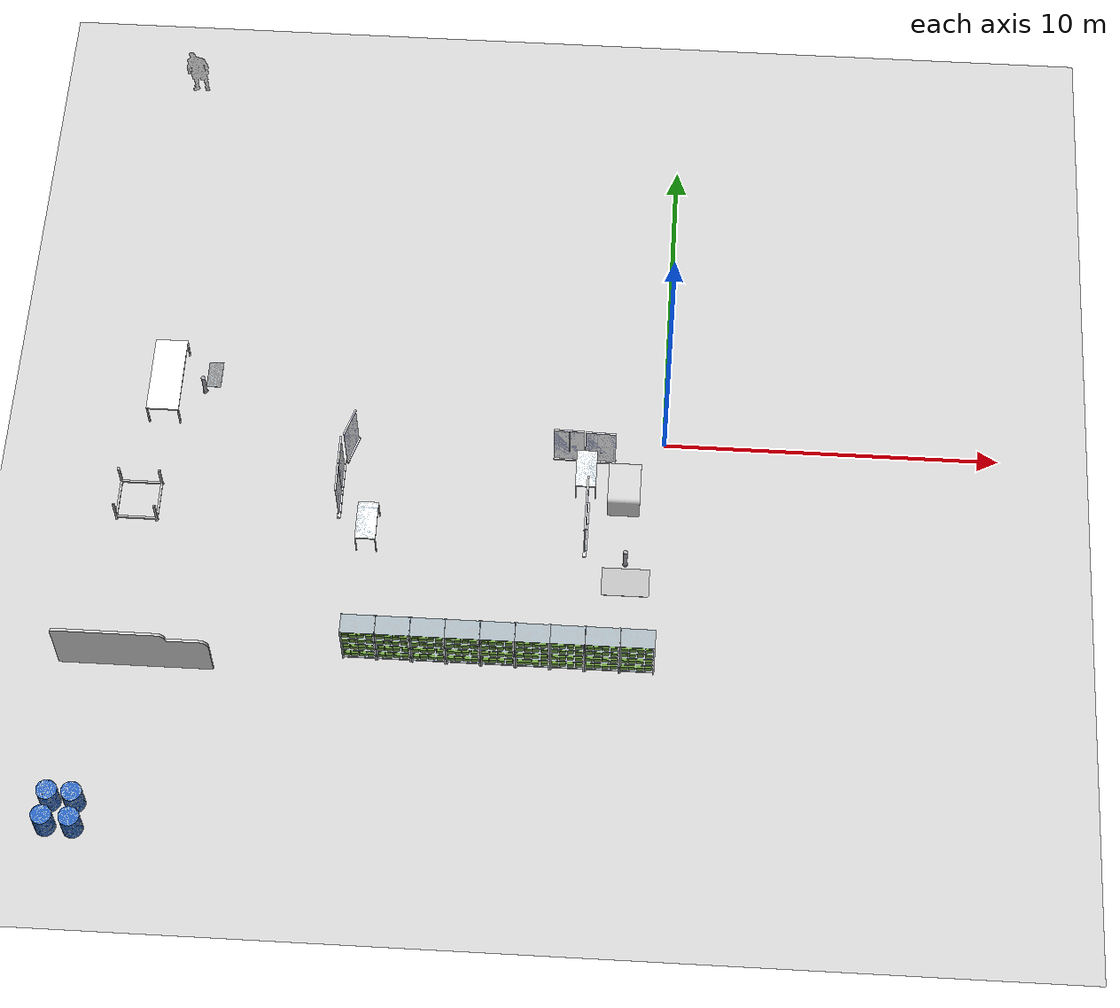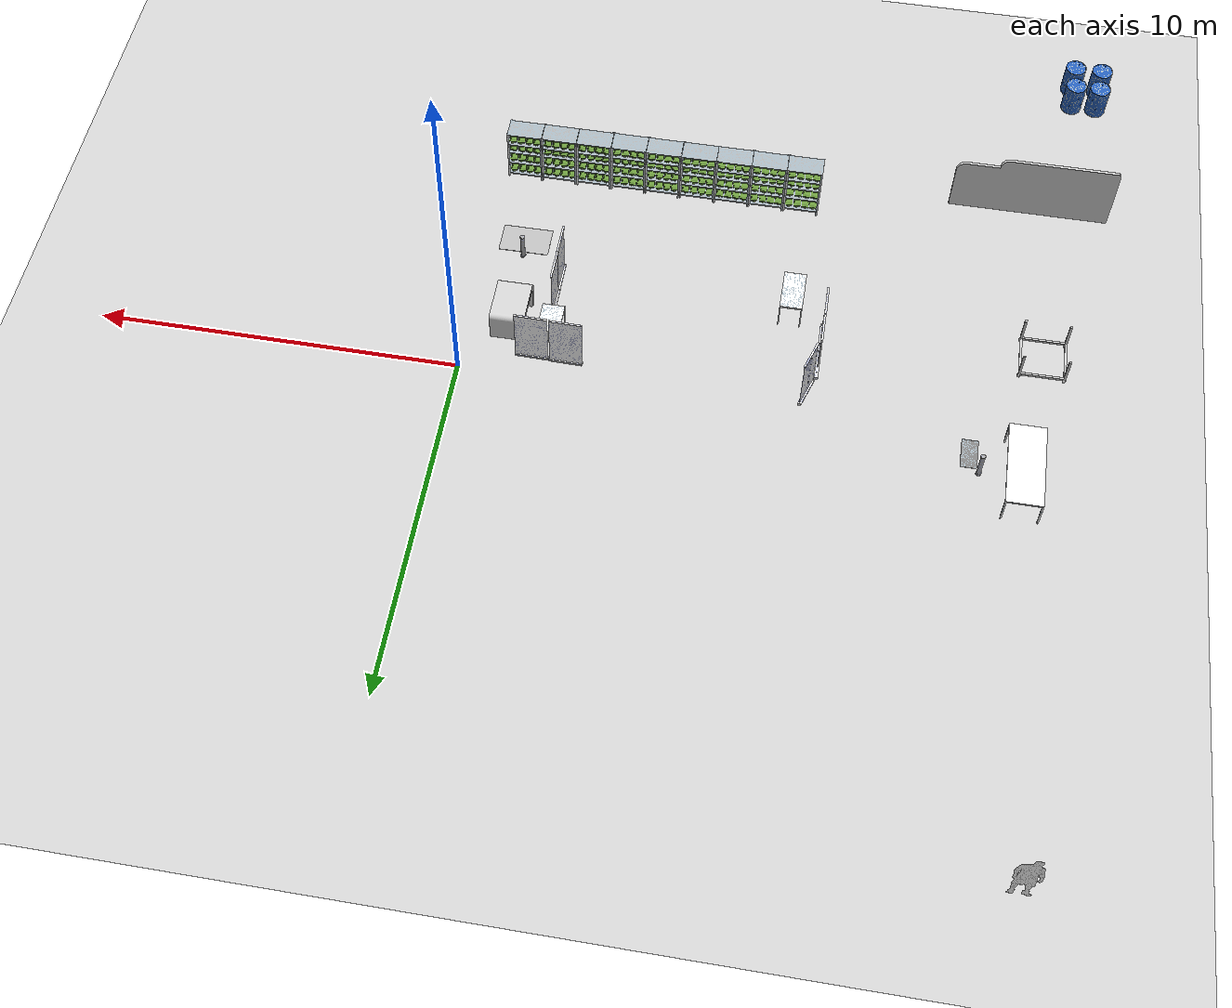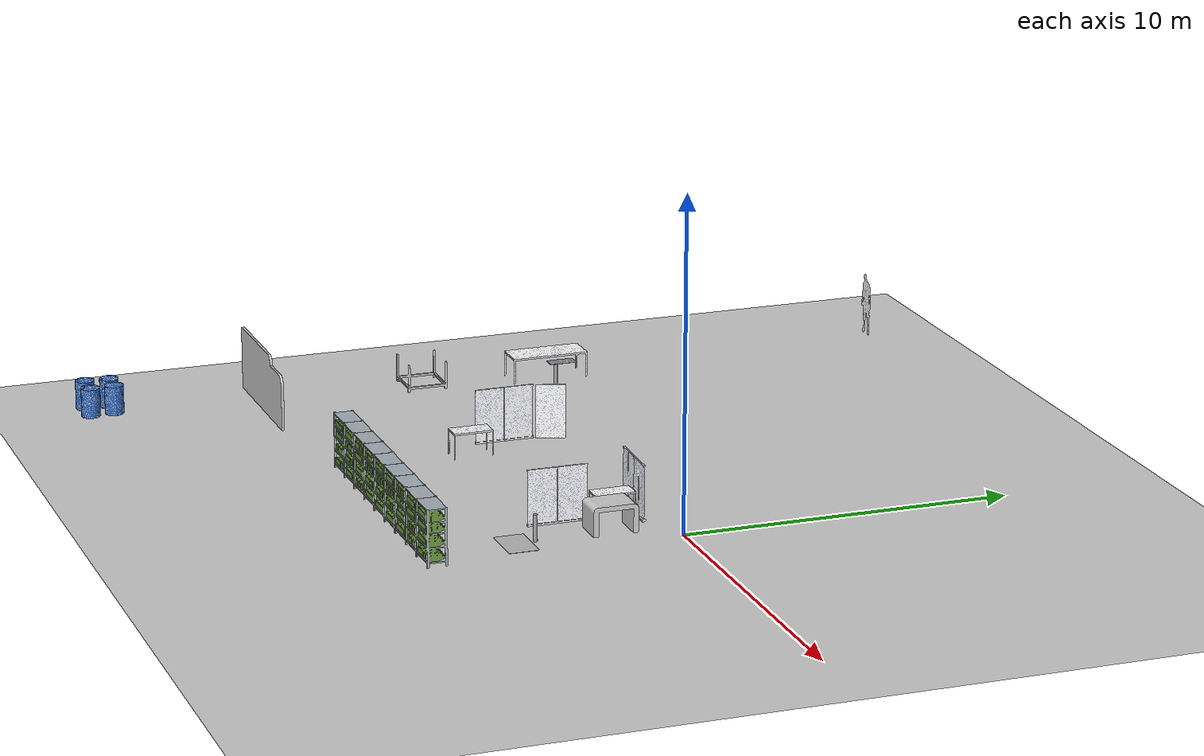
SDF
<sdf version="1.7">
 <world name="default">
  <model name="ground_plane">
   <static>1</static>
   <link name="link">
    <collision name="collision">
     <geometry><plane><normal>0 0 1</normal><size>100 100</size></plane></geometry>
     <surface>
      <contact><collide_bitmask>65535</collide_bitmask></contact>
      <friction><ode><mu>100</mu><mu2>50</mu2></ode></friction>
     </surface>
    </collision>
    <visual name="visual">
     <cast_shadows>0</cast_shadows>
     <geometry><plane><normal>0 0 1</normal><size>100 100</size></plane></geometry>
     <material>
      <script><uri>file://media/materials/scripts/gazebo.material</uri><name>Gazebo/Grey</name></script>
     </material>
    </visual>
   </link>
  </model>
  <model name="Pilotfabrik"><pose>-0.88371 -0.686599 0 0 -0 0</pose><static>1</static></model>
  <model name="Pilotfabrik_0"><pose>-0.936681 1.63881 0 0 -0 0</pose><static>1</static></model>
  <model name="plate">
   <static>1</static>
   <link name="link">
    <collision name="collision">
     <geometry><mesh><scale>4 2 2</scale><uri>model://plate/meshes/plate.dae</uri></mesh></geometry>
    </collision>
    <visual name="visual">
     <geometry><mesh><scale>4 2 2</scale><uri>model://plate/meshes/plate.dae</uri></mesh></geometry>
    </visual>
   </link>
   <pose>-13.852 1.61372 0.916164 0 0 -1.57471</pose>
  </model>
  <model name="plate_8">
   <static>1</static>
   <link name="link">
    <collision name="collision"><geometry><box><size>0.0 0.0 0.0</size></box></geometry></collision>
    <visual name="visual">
     <geometry><box><size>0.9 1.4 0.01</size></box></geometry>
     <material>
      <lighting>1</lighting>
      <script>
       <uri>model://plate_8/materials/scripts</uri>
       <uri>model://plate_8/materials/textures</uri>
       <name>plateby</name>
      </script>
     </material>
    </visual>
   </link>
   <pose>-0.964761 -4.67282 0 0 -0 1.57294</pose>
  </model>
  <model name="whitetable">
   <static>1</static>
   <link name="link">
    <collision name="collision">
     <geometry><mesh><scale>0.8 1 1</scale><uri>model://whitetable/meshes/whitetable.dae</uri></mesh></geometry>
    </collision>
    <visual name="visual">
     <geometry><mesh><scale>0.8 1 1</scale><uri>model://whitetable/meshes/whitetable.dae</uri></mesh></geometry>
     <material>
      <script>
       <uri>model://flipchart/materials/scripts</uri>
       <uri>model://flipchart/materials/textures</uri>
       <name>FlipChart/Diffuse</name>
      </script>
     </material>
    </visual>
   </link>
   <pose>-15.1353 1.25439 0 0 -0 0</pose>
  </model>
  <model name="gestell">
   <static>1</static>
   <link name="link">
    <collision name="collision">
     <geometry><mesh><scale>1.2 1.2 1.2</scale><uri>model://gestell/meshes/gestell.dae</uri></mesh></geometry>
    </collision>
    <visual name="visual">
     <geometry><mesh><scale>1.2 1.2 1.2</scale><uri>model://gestell/meshes/gestell.dae</uri></mesh></geometry>
    </visual>
   </link>
   <pose>-14.919 -3.40551 0 0 -0 0</pose>
  </model>
  <model name="trennwand">
   <static>1</static>
   <link name="link">
    <collision name="collision">
     <geometry><mesh><scale>0.8 0.8 1</scale><uri>model://trennwand/meshes/trennwand.dae</uri></mesh></geometry>
    </collision>
    <visual name="visual">
     <geometry><mesh><scale>0.8 0.8 1</scale><uri>model://trennwand/meshes/trennwand.dae</uri></mesh></geometry>
     <material>
      <script>
       <uri>model://flipchart/materials/scripts</uri>
       <uri>model://flipchart/materials/textures</uri>
       <name>FlipChart/Diffuse</name>
      </script>
     </material>
    </visual>
   </link>
   <pose>-17.1241 -8.13244 -0.052084 0 -0 0</pose>
  </model>
  <model name="barrel">
   <static>1</static>
   <link name="link">
    <collision name="collision">
     <geometry><mesh><scale>1 1 1</scale><uri>model://barrel/meshes/barrel.dae</uri></mesh></geometry>
    </collision>
    <visual name="visual">
     <geometry><mesh><scale>1 1 1</scale><uri>model://barrel/meshes/barrel.dae</uri></mesh></geometry>
    </visual>
   </link>
   <pose>-17.099 -13.5867 0 0 -0 0</pose>
  </model>
  <model name="barrel_clone">
   <static>1</static>
   <link name="link">
    <collision name="collision">
     <geometry><mesh><scale>1 1 1</scale><uri>model://barrel/meshes/barrel.dae</uri></mesh></geometry>
    </collision>
    <visual name="visual">
     <geometry><mesh><scale>1 1 1</scale><uri>model://barrel/meshes/barrel.dae</uri></mesh></geometry>
    </visual>
   </link>
   <pose>-17.0534 -12.8394 0 0 -0 0</pose>
  </model>
  <model name="barrel_clone_0">
   <static>1</static>
   <link name="link">
    <collision name="collision">
     <geometry><mesh><scale>1 1 1</scale><uri>model://barrel/meshes/barrel.dae</uri></mesh></geometry>
    </collision>
    <visual name="visual">
     <geometry><mesh><scale>1 1 1</scale><uri>model://barrel/meshes/barrel.dae</uri></mesh></geometry>
    </visual>
   </link>
   <pose>-16.3229 -13.5954 0 0 -0 0</pose>
  </model>
  <model name="barrel_clone_1">
   <static>1</static>
   <link name="link">
    <collision name="collision">
     <geometry><mesh><scale>1 1 1</scale><uri>model://barrel/meshes/barrel.dae</uri></mesh></geometry>
    </collision>
    <visual name="visual">
     <geometry><mesh><scale>1 1 1</scale><uri>model://barrel/meshes/barrel.dae</uri></mesh></geometry>
    </visual>
   </link>
   <pose>-16.3545 -12.8492 0 0 -0 0</pose>
  </model>
  <model name="shaq">
   <static>1</static>
   <link name="link">
    <collision name="collision">
     <geometry><mesh><scale>1 1 1</scale><uri>model://shaq/meshes/shaq.dae</uri></mesh></geometry>
    </collision>
    <visual name="visual">
     <geometry><mesh><scale>1 1 1</scale><uri>model://shaq/meshes/shaq.dae</uri></mesh></geometry>
     <material>
      <script>
       <uri>model://shaq/materials/scripts</uri>
       <uri>model://shaq/materials/textures</uri>
       <name>shaq/Diffuse</name>
      </script>
     </material>
    </visual>
   </link>
   <pose>-15.9128 12.3578 0 0 -0 0</pose>
  </model>
  <model name="banner_0_clone_clone_0_clone">
   <static>1</static>
   <link name="link">
    <collision name="collision">
     <geometry><mesh><scale>1 1.5 1</scale><uri>model://banner/meshes/banner.dae</uri></mesh></geometry>
    </collision>
    <visual name="visual">
     <geometry><mesh><scale>1 1.5 1</scale><uri>model://banner/meshes/banner.dae</uri></mesh></geometry>
     <material>
      <script>
       <uri>model://banner/materials/scripts</uri>
       <uri>model://banner/materials/textures</uri>
       <name>FlipChart/Diffuse</name>
      </script>
     </material>
    </visual>
   </link>
   <pose>-10.0821 -3.55091 0 0 -0 0.008857</pose>
  </model>
  <model name="banner_0_clone_clone_0_clone_0">
   <static>1</static>
   <link name="link">
    <collision name="collision">
     <geometry><mesh><scale>1 1.5 1</scale><uri>model://banner/meshes/banner.dae</uri></mesh></geometry>
    </collision>
    <visual name="visual">
     <geometry><mesh><scale>1 1.5 1</scale><uri>model://banner/meshes/banner.dae</uri></mesh></geometry>
     <material>
      <script>
       <uri>model://banner/materials/scripts</uri>
       <uri>model://banner/materials/textures</uri>
       <name>FlipChart/Diffuse</name>
      </script>
     </material>
    </visual>
   </link>
   <pose>-10.0903 -2.62492 0 0 -0 0.001032</pose>
  </model>
  <model name="banner_0_clone_clone_0_clone_1">
   <static>1</static>
   <link name="link">
    <collision name="collision">
     <geometry><mesh><scale>1 1.5 1</scale><uri>model://banner/meshes/banner.dae</uri></mesh></geometry>
    </collision>
    <visual name="visual">
     <geometry><mesh><scale>1 1.5 1</scale><uri>model://banner/meshes/banner.dae</uri></mesh></geometry>
     <material>
      <script>
       <uri>model://banner/materials/scripts</uri>
       <uri>model://banner/materials/textures</uri>
       <name>FlipChart/Diffuse</name>
      </script>
     </material>
    </visual>
   </link>
   <pose>-10.1499 -1.46423 0 0 0 -0.30684</pose>
  </model>
  <model name="whitetablesmall_0">
   <static>1</static>
   <link name="link">
    <collision name="collision">
     <geometry>
      <mesh><scale>0.5 0.5 1</scale><uri>model://whitetablesmall/meshes/whitetable.dae</uri></mesh>
     </geometry>
    </collision>
    <visual name="visual">
     <geometry>
      <mesh><scale>0.5 0.5 1</scale><uri>model://whitetablesmall/meshes/whitetable.dae</uri></mesh>
     </geometry>
     <material>
      <script>
       <uri>model://flipchart/materials/scripts</uri>
       <uri>model://flipchart/materials/textures</uri>
       <name>FlipChart/Diffuse</name>
      </script>
     </material>
    </visual>
   </link>
   <pose>-8.647886 -3.433512 0 0 -0 0</pose>
  </model>
  <model name="banner_0_clone_clone_0_clone_2">
   <static>1</static>
   <link name="link">
    <collision name="collision">
     <geometry><mesh><scale>1 1.5 1</scale><uri>model://banner/meshes/banner.dae</uri></mesh></geometry>
    </collision>
    <visual name="visual">
     <geometry><mesh><scale>1 1.5 1</scale><uri>model://banner/meshes/banner.dae</uri></mesh></geometry>
     <material>
      <script>
       <uri>model://banner/materials/scripts</uri>
       <uri>model://banner/materials/textures</uri>
       <name>FlipChart/Diffuse</name>
      </script>
     </material>
    </visual>
   </link>
   <pose>-1.65339 -1.57799 0 0 -0 3.13166</pose>
  </model>
  <model name="whitetablesmall_1_clone_1">
   <static>1</static>
   <link name="link">
    <collision name="collision">
     <geometry>
      <mesh><scale>0.5 0.5 0.9</scale><uri>model://whitetablesmall/meshes/whitetable.dae</uri></mesh>
     </geometry>
    </collision>
    <visual name="visual">
     <geometry>
      <mesh><scale>0.5 0.5 0.9</scale><uri>model://whitetablesmall/meshes/whitetable.dae</uri></mesh>
     </geometry>
     <material>
      <script>
       <uri>model://flipchart/materials/scripts</uri>
       <uri>model://flipchart/materials/textures</uri>
       <name>FlipChart/Diffuse</name>
      </script>
     </material>
    </visual>
   </link>
   <pose>-2.276631 -1.350417 0 0 -0 -3.140763</pose>
  </model>
  <model name="banner_0_clone_clone_clone_0">
   <static>1</static>
   <link name="link">
    <collision name="collision">
     <geometry><mesh><scale>1 1.5 1</scale><uri>model://banner/meshes/banner.dae</uri></mesh></geometry>
    </collision>
    <visual name="visual">
     <geometry><mesh><scale>1 1.5 1</scale><uri>model://banner/meshes/banner.dae</uri></mesh></geometry>
     <material>
      <script>
       <uri>model://banner/materials/scripts</uri>
       <uri>model://banner/materials/textures</uri>
       <name>FlipChart/Diffuse</name>
      </script>
     </material>
    </visual>
   </link>
   <pose>-0.930826 -1.20085 0 0 -0 1.55209</pose>
  </model>
  <model name="banner_0_clone_clone_0_clone_2_clone">
   <static>1</static>
   <link name="link">
    <collision name="collision">
     <geometry><mesh><scale>1 1.5 1</scale><uri>model://banner/meshes/banner.dae</uri></mesh></geometry>
    </collision>
    <visual name="visual">
     <geometry><mesh><scale>1 1.5 1</scale><uri>model://banner/meshes/banner.dae</uri></mesh></geometry>
     <material>
      <script>
       <uri>model://banner/materials/scripts</uri>
       <uri>model://banner/materials/textures</uri>
       <name>FlipChart/Diffuse</name>
      </script>
     </material>
    </visual>
   </link>
   <pose>-1.65781 -2.48745 0 0 -0 3.13166</pose>
  </model>
  <model name="pillar">
   <static>1</static>
   <link name="link">
    <collision name="collision">
     <geometry><mesh><scale>0.3 0.3 0.16</scale><uri>model://pillar/meshes/pillar.dae</uri></mesh></geometry>
    </collision>
    <visual name="visual">
     <geometry><mesh><scale>0.3 0.3 0.16</scale><uri>model://pillar/meshes/pillar.dae</uri></mesh></geometry>
    </visual>
   </link>
   <pose>-14.0797 1.05954 0 0 -0 0</pose>
  </model>
  <model name="banner_0_clone_clone_clone_0_clone">
   <static>1</static>
   <link name="link">
    <collision name="collision">
     <geometry><mesh><scale>1 1.5 1</scale><uri>model://banner/meshes/banner.dae</uri></mesh></geometry>
    </collision>
    <visual name="visual">
     <geometry><mesh><scale>1 1.5 1</scale><uri>model://banner/meshes/banner.dae</uri></mesh></geometry>
     <material>
      <script>
       <uri>model://banner/materials/scripts</uri>
       <uri>model://banner/materials/textures</uri>
       <name>FlipChart/Diffuse</name>
      </script>
     </material>
    </visual>
   </link>
   <pose>-1.87463 -1.16678 0 0 -0 1.55209</pose>
  </model>
  <model name="weirdtable">
   <static>1</static>
   <link name="link">
    <collision name="collision">
     <geometry>
      <mesh><scale>0.06 0.06 0.06</scale><uri>model://weirdtable/meshes/weirdtable.dae</uri></mesh>
     </geometry>
    </collision>
    <visual name="visual">
     <geometry>
      <mesh><scale>0.06 0.06 0.06</scale><uri>model://weirdtable/meshes/weirdtable.dae</uri></mesh>
     </geometry>
     <material>
      <script>
       <uri>model://flipchart/materials/scripts</uri>
       <uri>model://flipchart/materials/textures</uri>
       <name>FlipChart/Diffuse</name>
      </script>
     </material>
    </visual>
   </link>
   <pose>-1.135127 -1.195516 0 0 -0 -1.570335</pose>
  </model>
  <model name="pillar_clone_0">
   <static>1</static>
   <link name="link">
    <collision name="collision">
     <geometry><mesh><scale>0.3 0.3 0.16</scale><uri>model://pillar/meshes/pillar.dae</uri></mesh></geometry>
    </collision>
    <visual name="visual">
     <geometry><mesh><scale>0.3 0.3 0.16</scale><uri>model://pillar/meshes/pillar.dae</uri></mesh></geometry>
    </visual>
   </link>
   <pose>-1.055309 -4.160429 0 0 -0 0</pose>
  </model>
  <model name="newshelf">
   <static>1</static>
   <link name="link">
    <collision name="collision">
     <geometry><mesh><scale>0.9 1.4 1</scale><uri>model://newshelf/meshes/newshelf.dae</uri></mesh></geometry>
    </collision>
    <visual name="visual">
     <geometry><mesh><scale>0.9 1.4 1</scale><uri>model://newshelf/meshes/newshelf.dae</uri></mesh></geometry>
    </visual>
   </link>
   <pose>-5.35558 -7.50279 -0.136975 0 -0 3.13969</pose>
  </model>
  <model name="newshelf_clone_4">
   <static>1</static>
   <link name="link">
    <collision name="collision">
     <geometry><mesh><scale>0.9 1.4 1</scale><uri>model://newshelf/meshes/newshelf.dae</uri></mesh></geometry>
    </collision>
    <visual name="visual">
     <geometry><mesh><scale>0.9 1.4 1</scale><uri>model://newshelf/meshes/newshelf.dae</uri></mesh></geometry>
    </visual>
   </link>
   <pose>-6.35088 -7.50244 -0.136975 0 -0 3.13969</pose>
  </model>
  <model name="newshelf_clone_5">
   <static>1</static>
   <link name="link">
    <collision name="collision">
     <geometry><mesh><scale>0.9 1.4 1</scale><uri>model://newshelf/meshes/newshelf.dae</uri></mesh></geometry>
    </collision>
    <visual name="visual">
     <geometry><mesh><scale>0.9 1.4 1</scale><uri>model://newshelf/meshes/newshelf.dae</uri></mesh></geometry>
    </visual>
   </link>
   <pose>-7.35088 -7.50244 -0.136975 0 -0 3.13969</pose>
  </model>
  <model name="newshelf_clone_6">
   <static>1</static>
   <link name="link">
    <collision name="collision">
     <geometry><mesh><scale>0.9 1.4 1</scale><uri>model://newshelf/meshes/newshelf.dae</uri></mesh></geometry>
    </collision>
    <visual name="visual">
     <geometry><mesh><scale>0.9 1.4 1</scale><uri>model://newshelf/meshes/newshelf.dae</uri></mesh></geometry>
    </visual>
   </link>
   <pose>-8.35088 -7.50244 -0.136975 0 -0 3.13969</pose>
  </model>
  <model name="newshelf_clone">
   <static>1</static>
   <link name="link">
    <collision name="collision">
     <geometry><mesh><scale>0.9 1.4 1</scale><uri>model://newshelf/meshes/newshelf.dae</uri></mesh></geometry>
    </collision>
    <visual name="visual">
     <geometry><mesh><scale>0.9 1.4 1</scale><uri>model://newshelf/meshes/newshelf.dae</uri></mesh></geometry>
    </visual>
   </link>
   <pose>-4.35088 -7.50244 -0.136975 0 -0 3.13969</pose>
  </model>
  <model name="newshelf_clone_0">
   <static>1</static>
   <link name="link">
    <collision name="collision">
     <geometry><mesh><scale>0.9 1.4 1</scale><uri>model://newshelf/meshes/newshelf.dae</uri></mesh></geometry>
    </collision>
    <visual name="visual">
     <geometry><mesh><scale>0.9 1.4 1</scale><uri>model://newshelf/meshes/newshelf.dae</uri></mesh></geometry>
    </visual>
   </link>
   <pose>-3.35093 -7.50574 -0.136975 0 -0 3.13969</pose>
  </model>
  <model name="newshelf_clone_1">
   <static>1</static>
   <link name="link">
    <collision name="collision">
     <geometry><mesh><scale>0.9 1.4 1</scale><uri>model://newshelf/meshes/newshelf.dae</uri></mesh></geometry>
    </collision>
    <visual name="visual">
     <geometry><mesh><scale>0.9 1.4 1</scale><uri>model://newshelf/meshes/newshelf.dae</uri></mesh></geometry>
    </visual>
   </link>
   <pose>-2.34987 -7.50598 -0.136975 0 -0 3.13969</pose>
  </model>
  <model name="newshelf_clone_2">
   <static>1</static>
   <link name="link">
    <collision name="collision">
     <geometry><mesh><scale>0.9 1.4 1</scale><uri>model://newshelf/meshes/newshelf.dae</uri></mesh></geometry>
    </collision>
    <visual name="visual">
     <geometry><mesh><scale>0.9 1.4 1</scale><uri>model://newshelf/meshes/newshelf.dae</uri></mesh></geometry>
    </visual>
   </link>
   <pose>-1.34805 -7.50533 -0.136975 0 -0 3.13969</pose>
  </model>
  <model name="newshelf_clone_3">
   <static>1</static>
   <link name="link">
    <collision name="collision">
     <geometry><mesh><scale>0.9 1.4 1</scale><uri>model://newshelf/meshes/newshelf.dae</uri></mesh></geometry>
    </collision>
    <visual name="visual">
     <geometry><mesh><scale>0.9 1.4 1</scale><uri>model://newshelf/meshes/newshelf.dae</uri></mesh></geometry>
    </visual>
   </link>
   <pose>-0.349406 -7.5061 -0.136975 0 -0 3.13969</pose>
  </model>
 </world>
</sdf>
